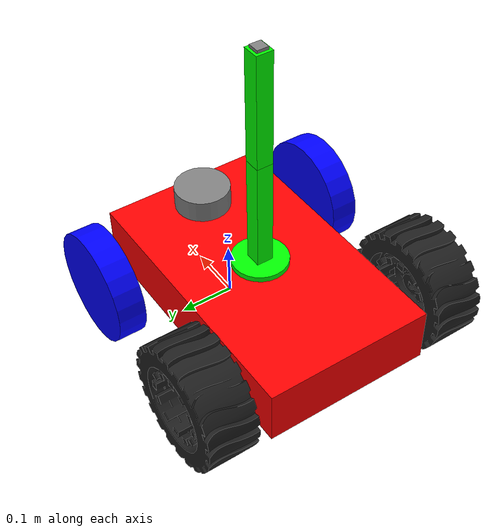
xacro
<?xml version="1.0"?>
<robot name="my_mobile_manipulator" xmlns:xacro="http://www.ros.org/wiki/xacro">

    <xacro:include filename="base.xacro" />
    <xacro:include filename="arm.xacro" />
    <xacro:include filename="sensors.xacro" />

    <gazebo>

        <plugin name="gazebo_ros_ackermann_drive" filename="libgazebo_ros_ackermann_drive.so">
            <ros>
                <remapping>cmd_vel:=cmd_vel</remapping>
                <remapping>odom:=odom</remapping>
            </ros>
            <update_rate>100.0</update_rate>

            <front_left_joint>front_left_wheel_joint</front_left_joint>
            <front_right_joint>front_right_wheel_joint</front_right_joint>
            <rear_left_joint>rear_left_wheel_joint</rear_left_joint>
            <rear_right_joint>rear_right_wheel_joint</rear_right_joint>
            <left_steering_joint>front_left_steer_joint</left_steering_joint>
            <right_steering_joint>front_right_steer_joint</right_steering_joint>

            <wheel_separation>0.44</wheel_separation>
            <wheel_diameter>0.2</wheel_diameter>
            <wheelbase>0.3</wheelbase>

            <max_steer>0.5</max_steer>
            <max_speed>2.0</max_speed>

            <left_steering_pid_gain>100 0 20</left_steering_pid_gain>
            <left_steering_i_range>0 0</left_steering_i_range>
            <right_steering_pid_gain>100 0 20</right_steering_pid_gain>
            <right_steering_i_range>0 0</right_steering_i_range>

            <linear_velocity_pid_gain>50 0 0</linear_velocity_pid_gain>
            <linear_velocity_i_range>0 5</linear_velocity_i_range>

            <max_wheel_torque>10.0</max_wheel_torque>
            <max_wheel_acceleration>0.1</max_wheel_acceleration>

            <publish_odom>true</publish_odom>
            <publish_odom_tf>true</publish_odom_tf>
            <publish_wheel_tf>false</publish_wheel_tf>
            <odometry_frame>odom</odometry_frame>
            <robot_base_frame>base_footprint</robot_base_frame>
        </plugin>

        <plugin name="gazebo_ros_joint_state_publisher" filename="libgazebo_ros_joint_state_publisher.so">
            <ros>
                <namespace>/</namespace>
                <remapping>~/out:=joint_states</remapping>
            </ros>
            <update_rate>100.0</update_rate>
            <joint_name>front_left_steer_joint</joint_name>
            <joint_name>front_right_steer_joint</joint_name>
            <joint_name>front_left_wheel_joint</joint_name>
            <joint_name>front_right_wheel_joint</joint_name>
            <joint_name>rear_left_wheel_joint</joint_name>
            <joint_name>rear_right_wheel_joint</joint_name>
            <joint_name>joint1</joint_name>
            <joint_name>joint2</joint_name>
        </plugin>

        <plugin name="gazebo_ros2_control" filename="libgazebo_ros2_control.so">
            <parameters>$(find base_controller)/config/arm_controller.yaml</parameters>
        </plugin>

    </gazebo>

    </robot>

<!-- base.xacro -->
<robot xmlns:xacro="http://www.ros.org/wiki/xacro">

    <xacro:property name="chassis_length" value="0.5"/>
    <xacro:property name="chassis_width" value="0.3"/>
    <xacro:property name="wheel_radius" value="0.1"/>

    <link name="base_link"></link>

    <link name="base_footprint"></link>

    <joint name="base_footprint_joint" type="fixed">
        <parent link="base_footprint"/>
        <child link="base_link"/>
        <origin xyz="0 0 ${wheel_radius}"/>
    </joint>

    <joint name="chassis_joint" type="fixed">
        <parent link="base_link"/>
        <child link="chassis"/>
        <origin xyz="-0.1 0 0"/>
    </joint>

    <link name="chassis">
        <visual>
            <origin xyz="0 0 0" rpy="0 0 0"/>
            <geometry><box size="${chassis_length} ${chassis_width} 0.1"/></geometry>
            <material name="red">
                <color rgba="1.0 0.0 0.0 1.0"/>
            </material>
        </visual>

        <collision>
            <origin xyz="0 0 0.05" rpy="0 0 0"/>
            <geometry><box size="0.4 0.15 0.1"/></geometry>
        </collision>

        <inertial>
            <origin xyz="0 0 -0.1" rpy="0 0 0"/>
            <mass value="5.0"/>
            <inertia ixx="0.1" ixy="0" ixz="0" iyy="0.1" iyz="0" izz="0.1"/>
        </inertial>
    </link>

    <xacro:macro name="rear_wheel" params="prefix y_reflect">
        <joint name="${prefix}_wheel_joint" type="continuous">
            <parent link="chassis"/>
            <child link="${prefix}_wheel"/>
            <origin xyz="-0.15 ${y_reflect * 0.22} 0" rpy="${pi/2} 0 0"/>
            <axis xyz="0 0 -1"/>
            <limit effort="1000.0" velocity="100.0"/>
            <dynamics damping="0.1" friction="0.1"/>
        </joint>
        <link name="${prefix}_wheel">
            <visual>
                <origin xyz="0 0 0.045" rpy="${pi/2} 0 0"/>
                <geometry>
                    <mesh filename="package://robot_description/mesh/wheel.dae" scale="0.005 0.005 0.005"/>
                </geometry>
            </visual>
            <collision>
                <origin xyz="0 0 0" rpy="0 0 0"/>
                <geometry><cylinder radius="${wheel_radius}" length="0.05"/></geometry>
            </collision>
            <inertial>
                <mass value="0.5"/>
                <inertia ixx="0.001" ixy="0" ixz="0" iyy="0.001" iyz="0" izz="0.001"/>
            </inertial>
        </link>
    </xacro:macro>

    <xacro:rear_wheel prefix="rear_left" y_reflect="1" />
    <xacro:rear_wheel prefix="rear_right" y_reflect="-1" />

    <xacro:macro name="front_wheel" params="prefix y_reflect">
        <joint name="${prefix}_steer_joint" type="revolute">
            <parent link="chassis"/>
            <child link="${prefix}_steer_link"/>
            <origin xyz="0.15 ${y_reflect * 0.22} 0" rpy="0 0 0"/>
            <axis xyz="0 0 1"/>
            <limit lower="-0.5" upper="0.5" effort="100" velocity="1.0"/>
            <dynamics damping="5.0" friction="2.0"/>
        </joint>
        <link name="${prefix}_steer_link">
            <inertial>
                <mass value="0.2"/>
                <inertia ixx="0.01" ixy="0" ixz="0" iyy="0.01" iyz="0" izz="0.01"/>
          </inertial>
        </link>

        <joint name="${prefix}_wheel_joint" type="continuous">
            <parent link="${prefix}_steer_link"/>
            <child link="${prefix}_wheel"/>
            <origin xyz="0 0 0" rpy="${pi/2} 0 0"/>
            <axis xyz="0 0 -1"/>
            <limit effort="100.0" velocity="100.0"/>
            <dynamics damping="0.1" friction="0.1"/>
        </joint>
        <link name="${prefix}_wheel">
            <visual>
                <geometry><cylinder radius="${wheel_radius}" length="0.05"/></geometry>
                <material name="blue">
                    <color rgba="0.0 0.0 1.0 1.0"/>
                </material>
            </visual>
            <collision>
                <geometry><cylinder radius="${wheel_radius}" length="0.05"/></geometry>
            </collision>
            <inertial>
                <mass value="0.5"/>
                <inertia ixx="0.01" ixy="0" ixz="0" iyy="0.01" iyz="0" izz="0.01"/>
            </inertial>
        </link>
    </xacro:macro>

    <xacro:front_wheel prefix="front_left" y_reflect="1" />
    <xacro:front_wheel prefix="front_right" y_reflect="-1" />

    <gazebo reference="chassis">
        <material>Gazebo/Red</material>
    </gazebo>

    <gazebo reference="front_left_wheel">
        <material>Gazebo/Blue</material>
        <mu1>1.5</mu1>
        <mu2>1.5</mu2>
        <kp>500000.0</kp>
        <kd>10.0</kd>
        <minDepth>0.001</minDepth> </gazebo>

    <gazebo reference="front_right_wheel">
        <material>Gazebo/Blue</material>
        <mu1>1.5</mu1>
        <mu2>1.5</mu2>
        <kp>500000.0</kp>
        <kd>10.0</kd>
        <minDepth>0.001</minDepth>
    </gazebo>

    <gazebo reference="rear_left_wheel">
        <material>Gazebo/Black</material>
        <mu1>1.5</mu1>
        <mu2>1.5</mu2>
        <kp>500000.0</kp>
        <kd>10.0</kd>
        <minDepth>0.001</minDepth>
    </gazebo>

    <gazebo reference="rear_right_wheel">
        <material>Gazebo/Black</material>
        <mu1>1.5</mu1>
        <mu2>1.5</mu2>
        <kp>500000.0</kp>
        <kd>10.0</kd>
        <minDepth>0.001</minDepth>
    </gazebo>

</robot>

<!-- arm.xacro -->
<robot xmlns:xacro="http://www.ros.org/wiki/xacro">

    <joint name="arm_base_joint" type="fixed">
        <parent link="chassis"/>
        <child link="arm_base"/>
        <origin xyz="0 0 0.05"/>
    </joint>

    <link name="arm_base">
        <visual>
            <geometry><cylinder radius="0.05" length="0.02"/></geometry>
            <material name="green">
                 <color rgba="0.0 1.0 0.0 1.0"/>
            </material>
        </visual>
        <collision>
            <geometry><cylinder radius="0.05" length="0.02"/></geometry>
        </collision>
        <inertial>
            <mass value="0.2"/>
            <inertia ixx="0.001" ixy="0" ixz="0" iyy="0.001" iyz="0" izz="0.001"/>
        </inertial>
    </link>

    <joint name="joint1" type="revolute">
        <parent link="arm_base"/>
        <child link="link1"/>
        <origin xyz="0 0 0.01" rpy="0 0 0"/>
        <axis xyz="0 0 1"/>
        <limit lower="-3.14" upper="3.14" effort="10" velocity="1.0"/>
        <dynamics damping="1.0" friction="0.5"/>
    </joint>

    <link name="link1">
        <visual>
            <origin xyz="0 0 0.1" rpy="0 0 0"/>
            <geometry><box size="0.03 0.03 0.2"/></geometry>
            <material name="green">
                <color rgba="0.0 1.0 0.0 1.0"/>
            </material>
        </visual>
        <collision>
            <origin xyz="0 0 0.1" rpy="0 0 0"/>
            <geometry><box size="0.03 0.03 0.2"/></geometry>
        </collision>
        <inertial>
            <mass value="1.0"/>
            <inertia ixx="0.01" ixy="0" ixz="0" iyy="0.01" iyz="0" izz="0.01"/>
        </inertial>
    </link>

    <joint name="joint2" type="revolute">
        <parent link="link1"/>
        <child link="link2"/>
        <origin xyz="0 0 0.2" rpy="0 0 0"/>
        <axis xyz="0 1 0"/>
        <limit lower="-1.57" upper="1.57" effort="10" velocity="1.0"/>
        <dynamics damping="1.0" friction="0.5"/>
    </joint>

    <link name="link2">
        <visual>
            <origin xyz="0 0 0.1" rpy="0 0 0"/>
            <geometry><box size="0.03 0.03 0.2"/></geometry>
            <material name="green">
                <color rgba="0.0 1.0 0.0 1.0"/>
            </material>
        </visual>
        <collision>
            <origin xyz="0 0 0.1" rpy="0 0 0"/>
            <geometry><box size="0.03 0.03 0.2"/></geometry>
        </collision>
        <inertial>
            <mass value="0.5"/>
            <inertia ixx="0.005" ixy="0" ixz="0" iyy="0.005" iyz="0" izz="0.005"/>
        </inertial>
    </link>

    <gazebo reference="arm_base">
        <material>Gazebo/Green</material>
    </gazebo>
    <gazebo reference="link1">
        <material>Gazebo/Green</material>
    </gazebo>
    <gazebo reference="link2">
        <material>Gazebo/Green</material>
    </gazebo>

    <ros2_control name="ArmControl" type="system">
        <hardware>
            <plugin>gazebo_ros2_control/GazeboSystem</plugin>
        </hardware>
        <joint name="joint1">
            <command_interface name="position"/>
            <state_interface name="position"/>
        </joint>
        <joint name="joint2">
            <command_interface name="position"/>
            <state_interface name="position"/>
        </joint>
    </ros2_control>

</robot>

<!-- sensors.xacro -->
<robot xmlns:xacro="http://www.ros.org/wiki/xacro">

    <joint name="lidar_joint" type="fixed">
        <parent link="chassis"/>
        <child link="lidar_frame"/>
        <origin xyz="0.18 0 0.15" rpy="0 0 0"/>
    </joint>
    <link name="lidar_frame">
        <visual>
            <origin xyz="0 0 -0.08" rpy="0 0 0"/>
            <geometry><cylinder radius="0.05" length="0.04"/></geometry>
            <material name="gray">
                <color rgba="0.5 0.5 0.5 1.0"/>
            </material>
        </visual>
    </link>

    <joint name="imu_joint" type="fixed">
        <parent link="link2"/>
        <child link="imu_link"/>
        <origin xyz="0 0 0.2" rpy="0 0 0"/>
    </joint>
    <link name="imu_link">
        <visual>
            <geometry><box size="0.02 0.02 0.01"/></geometry>
            <material name="gray">
                <color rgba="0.5 0.5 0.5 1.0"/>
            </material>
        </visual>
    </link>

    <gazebo reference="lidar_frame">
        <material>Gazebo/Gray</material>
        <sensor name="lidar_sensor" type="ray">
            <pose>0 0 0 0 0 0</pose>
            <visualize>true</visualize>
            <update_rate>10.0</update_rate>
            <ray>
                <scan>
                    <horizontal>
                        <samples>360</samples>
                        <resolution>1</resolution>
                        <min_angle>-3.14159</min_angle>
                        <max_angle>3.14159</max_angle>
                    </horizontal>
                </scan>
                <range>
                    <min>0.12</min>
                    <max>12.0</max>
                    <resolution>0.015</resolution>
                </range>
                <noise>
                    <type>gaussian</type>
                    <mean>0.0</mean>
                    <stddev>0.01</stddev>
                </noise>
            </ray>
            <plugin name="gazebo_ros_ray_sensor" filename="libgazebo_ros_ray_sensor.so">
                <ros>
                    <remapping>~/out:=scan</remapping>
                </ros>
                <output_type>sensor_msgs/LaserScan</output_type>
                <frame_name>lidar_frame</frame_name>
            </plugin>
        </sensor>
    </gazebo>

    <gazebo reference="imu_link">
        <material>Gazebo/Gray</material>
        <gravity>true</gravity>
        <sensor name="imu_sensor" type="imu">
            <always_on>true</always_on>
            <update_rate>100</update_rate>
            <visualize>true</visualize>
            <plugin filename="libgazebo_ros_imu_sensor.so" name="gazebo_ros_imu_sensor">
                <ros>
                    <remapping>~/out:=imu/data</remapping>
                </ros>
                <frame_name>imu_link</frame_name>
            </plugin>
        </sensor>
    </gazebo>

</robot>
